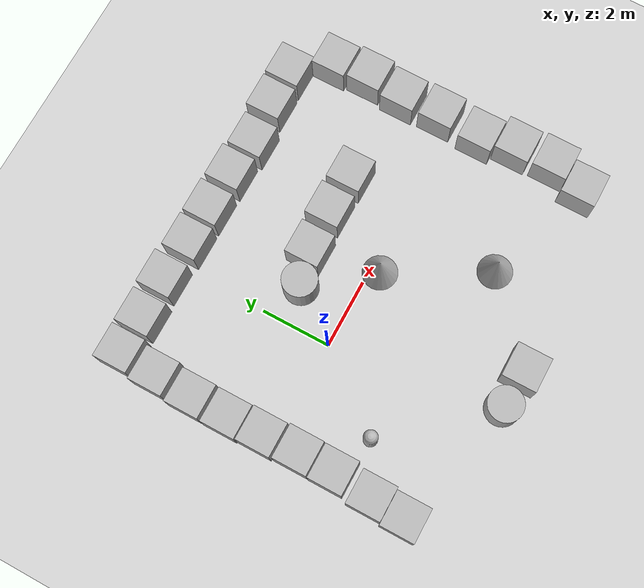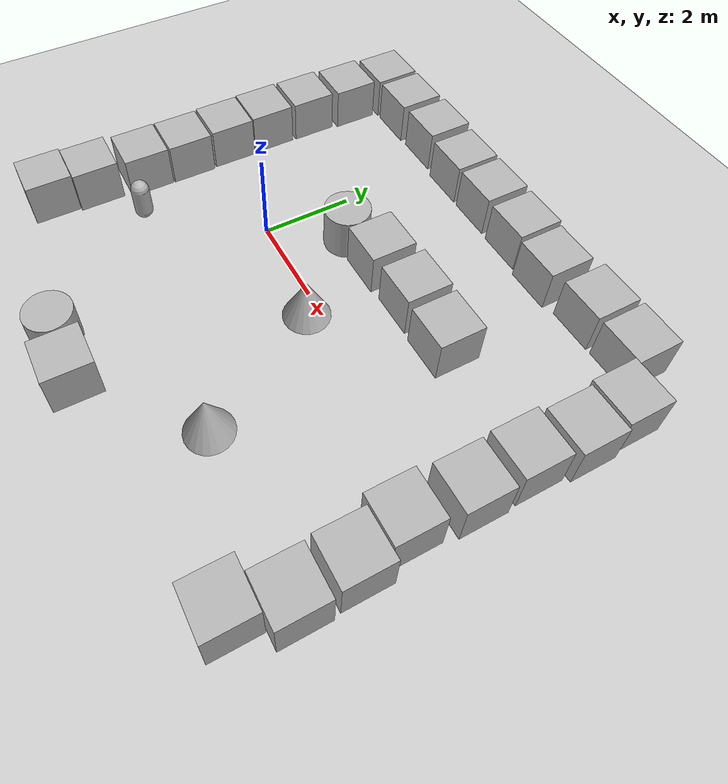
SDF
<sdf version="1.10">
 <world name="empty">
  <model name="ground_plane">
   <static>true</static>
   <link name="link">
    <collision name="collision">
     <geometry><plane><normal>0 0 1</normal><size>100 100</size></plane></geometry>
    </collision>
    <visual name="visual">
     <geometry><plane><normal>0 0 1</normal><size>100 100</size></plane></geometry>
     <material>
      <ambient>0.800000012 0.800000012 0.800000012 1</ambient>
      <diffuse>0.800000012 0.800000012 0.800000012 1</diffuse>
      <specular>0.800000012 0.800000012 0.800000012 1</specular>
     </material>
    </visual>
    <inertial>
     <mass>1</mass>
     <inertia><ixx>1</ixx><ixy>0</ixy><ixz>0</ixz><iyy>1</iyy><iyz>0</iyz><izz>1</izz></inertia>
    </inertial>
   </link>
  </model>
  <model name="box">
   <pose>1.8029219467110664 -4.9402323017846799 0.49999999970892495 1.9456243348768095e-21 -2.0287702973480091e-21 -7.5527752180039009e-22</pose>
   <link name="box_link">
    <inertial>
     <inertia><ixx>0.16666</ixx><ixy>0</ixy><ixz>0</ixz><iyy>0.16666</iyy><iyz>0</iyz><izz>0.16666</izz></inertia>
     <mass>1</mass>
    </inertial>
    <collision name="box_collision"><geometry><box><size>1 1 1</size></box></geometry></collision>
    <visual name="box_visual">
     <geometry><box><size>1 1 1</size></box></geometry>
     <material>
      <ambient>0.300000012 0.300000012 0.300000012 1</ambient>
      <diffuse>0.699999988 0.699999988 0.699999988 1</diffuse>
      <specular>1 1 1 1</specular>
     </material>
    </visual>
   </link>
   <static>false</static>
  </model>
  <model name="cylinder">
   <pose>0.69742500782012939 -4.8877110481262207 0.39216804054167947 1.731746546604768e-17 -2.62531762644311e-18 -3.2708537194835528e-19</pose>
   <link name="cylinder_link">
    <inertial>
     <inertia>
      <ixx>0.14580000000000001</ixx>
      <ixy>0</ixy>
      <ixz>0</ixz>
      <iyy>0.14580000000000001</iyy>
      <iyz>0</iyz>
      <izz>0.125</izz>
     </inertia>
     <mass>1</mass>
    </inertial>
    <collision name="cylinder_collision">
     <geometry><cylinder><radius>0.5</radius><length>1</length></cylinder></geometry>
    </collision>
    <visual name="cylinder_visual">
     <geometry><cylinder><radius>0.5</radius><length>1</length></cylinder></geometry>
     <material>
      <ambient>0.300000012 0.300000012 0.300000012 1</ambient>
      <diffuse>0.699999988 0.699999988 0.699999988 1</diffuse>
      <specular>1 1 1 1</specular>
     </material>
    </visual>
   </link>
   <static>false</static>
  </model>
  <model name="box_0">
   <pose>7.3041419982910156 2.606640100479126 0.49999999990199806 1.5168383847050144e-21 -6.8284900387290397e-21 -7.2088919212664049e-22</pose>
   <link name="box_link">
    <inertial>
     <inertia><ixx>0.16666</ixx><ixy>0</ixy><ixz>0</ixz><iyy>0.16666</iyy><iyz>0</iyz><izz>0.16666</izz></inertia>
     <mass>1</mass>
    </inertial>
    <collision name="box_collision"><geometry><box><size>1 1 1</size></box></geometry></collision>
    <visual name="box_visual">
     <geometry><box><size>1 1 1</size></box></geometry>
     <material>
      <ambient>0.300000012 0.300000012 0.300000012 1</ambient>
      <diffuse>0.699999988 0.699999988 0.699999988 1</diffuse>
      <specular>1 1 1 1</specular>
     </material>
    </visual>
   </link>
   <static>false</static>
  </model>
  <model name="box_1">
   <pose>7.2105679512023926 1.4994100332260132 0.49999999990199806 1.2287045058202266e-21 -2.8117306067242851e-21 -7.0165871101099256e-22</pose>
   <link name="box_link">
    <inertial>
     <inertia><ixx>0.16666</ixx><ixy>0</ixy><ixz>0</ixz><iyy>0.16666</iyy><iyz>0</iyz><izz>0.16666</izz></inertia>
     <mass>1</mass>
    </inertial>
    <collision name="box_collision"><geometry><box><size>1 1 1</size></box></geometry></collision>
    <visual name="box_visual">
     <geometry><box><size>1 1 1</size></box></geometry>
     <material>
      <ambient>0.300000012 0.300000012 0.300000012 1</ambient>
      <diffuse>0.699999988 0.699999988 0.699999988 1</diffuse>
      <specular>1 1 1 1</specular>
     </material>
    </visual>
   </link>
   <static>false</static>
  </model>
  <model name="box_2">
   <pose>7.2486476898193359 0.32666200399398804 0.49999999990199806 1.7912915900273766e-22 -3.8511324085270631e-21 -5.6253342361181017e-22</pose>
   <link name="box_link">
    <inertial>
     <inertia><ixx>0.16666</ixx><ixy>0</ixy><ixz>0</ixz><iyy>0.16666</iyy><iyz>0</iyz><izz>0.16666</izz></inertia>
     <mass>1</mass>
    </inertial>
    <collision name="box_collision"><geometry><box><size>1 1 1</size></box></geometry></collision>
    <visual name="box_visual">
     <geometry><box><size>1 1 1</size></box></geometry>
     <material>
      <ambient>0.300000012 0.300000012 0.300000012 1</ambient>
      <diffuse>0.699999988 0.699999988 0.699999988 1</diffuse>
      <specular>1 1 1 1</specular>
     </material>
    </visual>
   </link>
   <static>false</static>
  </model>
  <model name="box_6">
   <pose>7.1701793670654297 -0.93712598085403442 0.49999999990199806 2.8182951662427704e-21 -6.8739402334419064e-21 4.4936059007286857e-23</pose>
   <link name="box_link">
    <inertial>
     <inertia><ixx>0.16666</ixx><ixy>0</ixy><ixz>0</ixz><iyy>0.16666</iyy><iyz>0</iyz><izz>0.16666</izz></inertia>
     <mass>1</mass>
    </inertial>
    <collision name="box_collision"><geometry><box><size>1 1 1</size></box></geometry></collision>
    <visual name="box_visual">
     <geometry><box><size>1 1 1</size></box></geometry>
     <material>
      <ambient>0.300000012 0.300000012 0.300000012 1</ambient>
      <diffuse>0.699999988 0.699999988 0.699999988 1</diffuse>
      <specular>1 1 1 1</specular>
     </material>
    </visual>
   </link>
   <static>false</static>
  </model>
  <model name="box_7">
   <pose>7.3697552680969238 -1.9676200151443481 0.49999999990199806 8.7941230073099993e-22 -2.2139176495129975e-21 -3.6059947568603891e-22</pose>
   <link name="box_link">
    <inertial>
     <inertia><ixx>0.16666</ixx><ixy>0</ixy><ixz>0</ixz><iyy>0.16666</iyy><iyz>0</iyz><izz>0.16666</izz></inertia>
     <mass>1</mass>
    </inertial>
    <collision name="box_collision"><geometry><box><size>1 1 1</size></box></geometry></collision>
    <visual name="box_visual">
     <geometry><box><size>1 1 1</size></box></geometry>
     <material>
      <ambient>0.300000012 0.300000012 0.300000012 1</ambient>
      <diffuse>0.699999988 0.699999988 0.699999988 1</diffuse>
      <specular>1 1 1 1</specular>
     </material>
    </visual>
   </link>
   <static>false</static>
  </model>
  <model name="box_8">
   <pose>7.4158802936807593 -3.0975309045415642 0.49999999980497606 1.0048033485058014e-21 -2.4640853465547739e-21 -3.9210766489770922e-22</pose>
   <link name="box_link">
    <inertial>
     <inertia><ixx>0.16666</ixx><ixy>0</ixy><ixz>0</ixz><iyy>0.16666</iyy><iyz>0</iyz><izz>0.16666</izz></inertia>
     <mass>1</mass>
    </inertial>
    <collision name="box_collision"><geometry><box><size>1 1 1</size></box></geometry></collision>
    <visual name="box_visual">
     <geometry><box><size>1 1 1</size></box></geometry>
     <material>
      <ambient>0.300000012 0.300000012 0.300000012 1</ambient>
      <diffuse>0.699999988 0.699999988 0.699999988 1</diffuse>
      <specular>1 1 1 1</specular>
     </material>
    </visual>
   </link>
   <static>false</static>
  </model>
  <model name="box_9">
   <pose>7.083578917499171 -4.1148498478956697 0.4999999901998512 -5.0054462870855815e-09 6.7667792938227688e-13 -1.6027558188792147e-06</pose>
   <link name="box_link">
    <inertial>
     <inertia><ixx>0.16666</ixx><ixy>0</ixy><ixz>0</ixz><iyy>0.16666</iyy><iyz>0</iyz><izz>0.16666</izz></inertia>
     <mass>1</mass>
    </inertial>
    <collision name="box_collision"><geometry><box><size>1 1 1</size></box></geometry></collision>
    <visual name="box_visual">
     <geometry><box><size>1 1 1</size></box></geometry>
     <material>
      <ambient>0.300000012 0.300000012 0.300000012 1</ambient>
      <diffuse>0.699999988 0.699999988 0.699999988 1</diffuse>
      <specular>1 1 1 1</specular>
     </material>
    </visual>
   </link>
   <static>false</static>
  </model>
  <model name="box_16">
   <pose>7.2284773836460516 3.6682880873089405 0.49999999019983887 1.7311705597020822e-08 5.0367547478796201e-13 2.2522522120258475e-06</pose>
   <link name="box_link">
    <inertial>
     <inertia><ixx>0.16666</ixx><ixy>0</ixy><ixz>0</ixz><iyy>0.16666</iyy><iyz>0</iyz><izz>0.16666</izz></inertia>
     <mass>1</mass>
    </inertial>
    <collision name="box_collision"><geometry><box><size>1 1 1</size></box></geometry></collision>
    <visual name="box_visual">
     <geometry><box><size>1 1 1</size></box></geometry>
     <material>
      <ambient>0.300000012 0.300000012 0.300000012 1</ambient>
      <diffuse>0.699999988 0.699999988 0.699999988 1</diffuse>
      <specular>1 1 1 1</specular>
     </material>
    </visual>
   </link>
   <static>false</static>
  </model>
  <model name="box_17">
   <pose>6.3534429665516008 4.6682840453196484 0.49999999019963143 -1.2765133758391765e-08 -2.2639738741085814e-13 3.4527045442701908e-06</pose>
   <link name="box_link">
    <inertial>
     <inertia><ixx>0.16666</ixx><ixy>0</ixy><ixz>0</ixz><iyy>0.16666</iyy><iyz>0</iyz><izz>0.16666</izz></inertia>
     <mass>1</mass>
    </inertial>
    <collision name="box_collision"><geometry><box><size>1 1 1</size></box></geometry></collision>
    <visual name="box_visual">
     <geometry><box><size>1 1 1</size></box></geometry>
     <material>
      <ambient>0.300000012 0.300000012 0.300000012 1</ambient>
      <diffuse>0.699999988 0.699999988 0.699999988 1</diffuse>
      <specular>1 1 1 1</specular>
     </material>
    </visual>
   </link>
   <static>false</static>
  </model>
  <model name="box_18">
   <pose>5.2534054060505504 4.6579889603353957 0.49999999990199806 6.2287739151293738e-22 9.3279666454713669e-22 -3.6315533669320137e-22</pose>
   <link name="box_link">
    <inertial>
     <inertia><ixx>0.16666</ixx><ixy>0</ixy><ixz>0</ixz><iyy>0.16666</iyy><iyz>0</iyz><izz>0.16666</izz></inertia>
     <mass>1</mass>
    </inertial>
    <collision name="box_collision"><geometry><box><size>1 1 1</size></box></geometry></collision>
    <visual name="box_visual">
     <geometry><box><size>1 1 1</size></box></geometry>
     <material>
      <ambient>0.300000012 0.300000012 0.300000012 1</ambient>
      <diffuse>0.699999988 0.699999988 0.699999988 1</diffuse>
      <specular>1 1 1 1</specular>
     </material>
    </visual>
   </link>
   <static>false</static>
  </model>
  <model name="box_19">
   <pose>4.0295776346560093 4.5452057706611155 0.49999999990199806 6.2287739151293738e-22 9.3279666454713669e-22 -3.6315533669320137e-22</pose>
   <link name="box_link">
    <inertial>
     <inertia><ixx>0.16666</ixx><ixy>0</ixy><ixz>0</ixz><iyy>0.16666</iyy><iyz>0</iyz><izz>0.16666</izz></inertia>
     <mass>1</mass>
    </inertial>
    <collision name="box_collision"><geometry><box><size>1 1 1</size></box></geometry></collision>
    <visual name="box_visual">
     <geometry><box><size>1 1 1</size></box></geometry>
     <material>
      <ambient>0.300000012 0.300000012 0.300000012 1</ambient>
      <diffuse>0.699999988 0.699999988 0.699999988 1</diffuse>
      <specular>1 1 1 1</specular>
     </material>
    </visual>
   </link>
   <static>false</static>
  </model>
  <model name="box_20">
   <pose>2.9275956714733198 4.6291333544808468 0.49999999990199806 6.2287739151293738e-22 9.3279666454713669e-22 -3.6315533669320137e-22</pose>
   <link name="box_link">
    <inertial>
     <inertia><ixx>0.16666</ixx><ixy>0</ixy><ixz>0</ixz><iyy>0.16666</iyy><iyz>0</iyz><izz>0.16666</izz></inertia>
     <mass>1</mass>
    </inertial>
    <collision name="box_collision"><geometry><box><size>1 1 1</size></box></geometry></collision>
    <visual name="box_visual">
     <geometry><box><size>1 1 1</size></box></geometry>
     <material>
      <ambient>0.300000012 0.300000012 0.300000012 1</ambient>
      <diffuse>0.699999988 0.699999988 0.699999988 1</diffuse>
      <specular>1 1 1 1</specular>
     </material>
    </visual>
   </link>
   <static>false</static>
  </model>
  <model name="box_21">
   <pose>1.7741337268243713 4.6472916629790317 0.49999999990199806 6.2287739151293738e-22 9.3279666454713669e-22 -3.6315533669320137e-22</pose>
   <link name="box_link">
    <inertial>
     <inertia><ixx>0.16666</ixx><ixy>0</ixy><ixz>0</ixz><iyy>0.16666</iyy><iyz>0</iyz><izz>0.16666</izz></inertia>
     <mass>1</mass>
    </inertial>
    <collision name="box_collision"><geometry><box><size>1 1 1</size></box></geometry></collision>
    <visual name="box_visual">
     <geometry><box><size>1 1 1</size></box></geometry>
     <material>
      <ambient>0.300000012 0.300000012 0.300000012 1</ambient>
      <diffuse>0.699999988 0.699999988 0.699999988 1</diffuse>
      <specular>1 1 1 1</specular>
     </material>
    </visual>
   </link>
   <static>false</static>
  </model>
  <model name="box_22">
   <pose>0.67671356024645357 4.6495231021759968 0.49999999990199806 6.2287739151293738e-22 9.3279666454713669e-22 -3.6315533669320137e-22</pose>
   <link name="box_link">
    <inertial>
     <inertia><ixx>0.16666</ixx><ixy>0</ixy><ixz>0</ixz><iyy>0.16666</iyy><iyz>0</iyz><izz>0.16666</izz></inertia>
     <mass>1</mass>
    </inertial>
    <collision name="box_collision"><geometry><box><size>1 1 1</size></box></geometry></collision>
    <visual name="box_visual">
     <geometry><box><size>1 1 1</size></box></geometry>
     <material>
      <ambient>0.300000012 0.300000012 0.300000012 1</ambient>
      <diffuse>0.699999988 0.699999988 0.699999988 1</diffuse>
      <specular>1 1 1 1</specular>
     </material>
    </visual>
   </link>
   <static>false</static>
  </model>
  <model name="box_23">
   <pose>-0.52900487386500306 4.7230642957541882 0.49999999990199806 6.2287739151293738e-22 9.3279666454713669e-22 -3.6315533669320137e-22</pose>
   <link name="box_link">
    <inertial>
     <inertia><ixx>0.16666</ixx><ixy>0</ixy><ixz>0</ixz><iyy>0.16666</iyy><iyz>0</iyz><izz>0.16666</izz></inertia>
     <mass>1</mass>
    </inertial>
    <collision name="box_collision"><geometry><box><size>1 1 1</size></box></geometry></collision>
    <visual name="box_visual">
     <geometry><box><size>1 1 1</size></box></geometry>
     <material>
      <ambient>0.300000012 0.300000012 0.300000012 1</ambient>
      <diffuse>0.699999988 0.699999988 0.699999988 1</diffuse>
      <specular>1 1 1 1</specular>
     </material>
    </visual>
   </link>
   <static>false</static>
  </model>
  <model name="box_24">
   <pose>-1.6940723823211039 4.6902858663462901 0.49999999990199806 6.2287739151293738e-22 9.3279666454713669e-22 -3.6315533669320137e-22</pose>
   <link name="box_link">
    <inertial>
     <inertia><ixx>0.16666</ixx><ixy>0</ixy><ixz>0</ixz><iyy>0.16666</iyy><iyz>0</iyz><izz>0.16666</izz></inertia>
     <mass>1</mass>
    </inertial>
    <collision name="box_collision"><geometry><box><size>1 1 1</size></box></geometry></collision>
    <visual name="box_visual">
     <geometry><box><size>1 1 1</size></box></geometry>
     <material>
      <ambient>0.300000012 0.300000012 0.300000012 1</ambient>
      <diffuse>0.699999988 0.699999988 0.699999988 1</diffuse>
      <specular>1 1 1 1</specular>
     </material>
    </visual>
   </link>
   <static>false</static>
  </model>
  <model name="box_25">
   <pose>-2.7844191484214762 4.680301058964357 0.49999999990199806 6.2287739151293738e-22 9.3279666454713669e-22 -3.6315533669320137e-22</pose>
   <link name="box_link">
    <inertial>
     <inertia><ixx>0.16666</ixx><ixy>0</ixy><ixz>0</ixz><iyy>0.16666</iyy><iyz>0</iyz><izz>0.16666</izz></inertia>
     <mass>1</mass>
    </inertial>
    <collision name="box_collision"><geometry><box><size>1 1 1</size></box></geometry></collision>
    <visual name="box_visual">
     <geometry><box><size>1 1 1</size></box></geometry>
     <material>
      <ambient>0.300000012 0.300000012 0.300000012 1</ambient>
      <diffuse>0.699999988 0.699999988 0.699999988 1</diffuse>
      <specular>1 1 1 1</specular>
     </material>
    </visual>
   </link>
   <static>false</static>
  </model>
  <model name="box_26">
   <pose>-2.8712853102488949 3.5696913958604108 0.49999999990199806 6.2287739151293738e-22 9.3279666454713669e-22 -3.6315533669320137e-22</pose>
   <link name="box_link">
    <inertial>
     <inertia><ixx>0.16666</ixx><ixy>0</ixy><ixz>0</ixz><iyy>0.16666</iyy><iyz>0</iyz><izz>0.16666</izz></inertia>
     <mass>1</mass>
    </inertial>
    <collision name="box_collision"><geometry><box><size>1 1 1</size></box></geometry></collision>
    <visual name="box_visual">
     <geometry><box><size>1 1 1</size></box></geometry>
     <material>
      <ambient>0.300000012 0.300000012 0.300000012 1</ambient>
      <diffuse>0.699999988 0.699999988 0.699999988 1</diffuse>
      <specular>1 1 1 1</specular>
     </material>
    </visual>
   </link>
   <static>false</static>
  </model>
  <model name="box_27">
   <pose>-2.9324519904683397 2.4445221172465974 0.49999999990199806 6.2287739151293738e-22 9.3279666454713669e-22 -3.6315533669320137e-22</pose>
   <link name="box_link">
    <inertial>
     <inertia><ixx>0.16666</ixx><ixy>0</ixy><ixz>0</ixz><iyy>0.16666</iyy><iyz>0</iyz><izz>0.16666</izz></inertia>
     <mass>1</mass>
    </inertial>
    <collision name="box_collision"><geometry><box><size>1 1 1</size></box></geometry></collision>
    <visual name="box_visual">
     <geometry><box><size>1 1 1</size></box></geometry>
     <material>
      <ambient>0.300000012 0.300000012 0.300000012 1</ambient>
      <diffuse>0.699999988 0.699999988 0.699999988 1</diffuse>
      <specular>1 1 1 1</specular>
     </material>
    </visual>
   </link>
   <static>false</static>
  </model>
  <model name="box_28">
   <pose>-2.9430180161721049 1.361581606022769 0.49999999990199806 6.2287739151293738e-22 9.3279666454713669e-22 -3.6315533669320137e-22</pose>
   <link name="box_link">
    <inertial>
     <inertia><ixx>0.16666</ixx><ixy>0</ixy><ixz>0</ixz><iyy>0.16666</iyy><iyz>0</iyz><izz>0.16666</izz></inertia>
     <mass>1</mass>
    </inertial>
    <collision name="box_collision"><geometry><box><size>1 1 1</size></box></geometry></collision>
    <visual name="box_visual">
     <geometry><box><size>1 1 1</size></box></geometry>
     <material>
      <ambient>0.300000012 0.300000012 0.300000012 1</ambient>
      <diffuse>0.699999988 0.699999988 0.699999988 1</diffuse>
      <specular>1 1 1 1</specular>
     </material>
    </visual>
   </link>
   <static>false</static>
  </model>
  <model name="box_29">
   <pose>-2.9187763636575417 0.33238052469198842 0.49999999990199806 6.2287739151293738e-22 9.3279666454713669e-22 -3.6315533669320137e-22</pose>
   <link name="box_link">
    <inertial>
     <inertia><ixx>0.16666</ixx><ixy>0</ixy><ixz>0</ixz><iyy>0.16666</iyy><iyz>0</iyz><izz>0.16666</izz></inertia>
     <mass>1</mass>
    </inertial>
    <collision name="box_collision"><geometry><box><size>1 1 1</size></box></geometry></collision>
    <visual name="box_visual">
     <geometry><box><size>1 1 1</size></box></geometry>
     <material>
      <ambient>0.300000012 0.300000012 0.300000012 1</ambient>
      <diffuse>0.699999988 0.699999988 0.699999988 1</diffuse>
      <specular>1 1 1 1</specular>
     </material>
    </visual>
   </link>
   <static>false</static>
  </model>
  <model name="box_30">
   <pose>-2.8841041433069523 -0.72282486379328414 0.49999999990199806 6.2287739151293738e-22 9.3279666454713669e-22 -3.6315533669320137e-22</pose>
   <link name="box_link">
    <inertial>
     <inertia><ixx>0.16666</ixx><ixy>0</ixy><ixz>0</ixz><iyy>0.16666</iyy><iyz>0</iyz><izz>0.16666</izz></inertia>
     <mass>1</mass>
    </inertial>
    <collision name="box_collision"><geometry><box><size>1 1 1</size></box></geometry></collision>
    <visual name="box_visual">
     <geometry><box><size>1 1 1</size></box></geometry>
     <material>
      <ambient>0.300000012 0.300000012 0.300000012 1</ambient>
      <diffuse>0.699999988 0.699999988 0.699999988 1</diffuse>
      <specular>1 1 1 1</specular>
     </material>
    </visual>
   </link>
   <static>false</static>
  </model>
  <model name="box_31">
   <pose>-2.8944062708120146 -1.7570096625936276 0.49999999990199806 6.2287739151293738e-22 9.3279666454713669e-22 -3.6315533669320137e-22</pose>
   <link name="box_link">
    <inertial>
     <inertia><ixx>0.16666</ixx><ixy>0</ixy><ixz>0</ixz><iyy>0.16666</iyy><iyz>0</iyz><izz>0.16666</izz></inertia>
     <mass>1</mass>
    </inertial>
    <collision name="box_collision"><geometry><box><size>1 1 1</size></box></geometry></collision>
    <visual name="box_visual">
     <geometry><box><size>1 1 1</size></box></geometry>
     <material>
      <ambient>0.300000012 0.300000012 0.300000012 1</ambient>
      <diffuse>0.699999988 0.699999988 0.699999988 1</diffuse>
      <specular>1 1 1 1</specular>
     </material>
    </visual>
   </link>
   <static>false</static>
  </model>
  <model name="box_32">
   <pose>-2.996549854148201 -2.9150881569977187 0.49999999990199806 6.2287739151293738e-22 9.3279666454713669e-22 -3.6315533669320137e-22</pose>
   <link name="box_link">
    <inertial>
     <inertia><ixx>0.16666</ixx><ixy>0</ixy><ixz>0</ixz><iyy>0.16666</iyy><iyz>0</iyz><izz>0.16666</izz></inertia>
     <mass>1</mass>
    </inertial>
    <collision name="box_collision"><geometry><box><size>1 1 1</size></box></geometry></collision>
    <visual name="box_visual">
     <geometry><box><size>1 1 1</size></box></geometry>
     <material>
      <ambient>0.300000012 0.300000012 0.300000012 1</ambient>
      <diffuse>0.699999988 0.699999988 0.699999988 1</diffuse>
      <specular>1 1 1 1</specular>
     </material>
    </visual>
   </link>
   <static>false</static>
  </model>
  <model name="box_33">
   <pose>-3.0658264451040367 -3.9244253724440612 0.49999999990199806 -4.9431071861903433e-22 9.8960145325785522e-22 1.6714802379934959e-22</pose>
   <link name="box_link">
    <inertial>
     <inertia><ixx>0.16666</ixx><ixy>0</ixy><ixz>0</ixz><iyy>0.16666</iyy><iyz>0</iyz><izz>0.16666</izz></inertia>
     <mass>1</mass>
    </inertial>
    <collision name="box_collision"><geometry><box><size>1 1 1</size></box></geometry></collision>
    <visual name="box_visual">
     <geometry><box><size>1 1 1</size></box></geometry>
     <material>
      <ambient>0.300000012 0.300000012 0.300000012 1</ambient>
      <diffuse>0.699999988 0.699999988 0.699999988 1</diffuse>
      <specular>1 1 1 1</specular>
     </material>
    </visual>
   </link>
   <static>false</static>
  </model>
  <model name="cylinder_0">
   <pose>1.0614062794234791 1.4169935847447781 0.49999943341616465 2.4948277832717329e-10 -1.6244634833711402e-08 -3.088237772363138e-08</pose>
   <link name="cylinder_link">
    <inertial>
     <inertia>
      <ixx>0.14580000000000001</ixx>
      <ixy>0</ixy>
      <ixz>0</ixz>
      <iyy>0.14580000000000001</iyy>
      <iyz>0</iyz>
      <izz>0.125</izz>
     </inertia>
     <mass>1</mass>
    </inertial>
    <collision name="cylinder_collision">
     <geometry><cylinder><radius>0.5</radius><length>1</length></cylinder></geometry>
    </collision>
    <visual name="cylinder_visual">
     <geometry><cylinder><radius>0.5</radius><length>1</length></cylinder></geometry>
     <material>
      <ambient>0.300000012 0.300000012 0.300000012 1</ambient>
      <diffuse>0.699999988 0.699999988 0.699999988 1</diffuse>
      <specular>1 1 1 1</specular>
     </material>
    </visual>
   </link>
   <static>false</static>
  </model>
  <model name="box_44">
   <pose>4.4406990092767931 1.6947160730560968 0.49999999990199806 6.2287739151293738e-22 9.3279666454713669e-22 -3.6315533669320137e-22</pose>
   <link name="box_link">
    <inertial>
     <inertia><ixx>0.16666</ixx><ixy>0</ixy><ixz>0</ixz><iyy>0.16666</iyy><iyz>0</iyz><izz>0.16666</izz></inertia>
     <mass>1</mass>
    </inertial>
    <collision name="box_collision"><geometry><box><size>1 1 1</size></box></geometry></collision>
    <visual name="box_visual">
     <geometry><box><size>1 1 1</size></box></geometry>
     <material>
      <ambient>0.300000012 0.300000012 0.300000012 1</ambient>
      <diffuse>0.699999988 0.699999988 0.699999988 1</diffuse>
      <specular>1 1 1 1</specular>
     </material>
    </visual>
   </link>
   <static>false</static>
  </model>
  <model name="box_45">
   <pose>3.2801038782558525 1.7223972543639476 0.49999999990199806 6.2287739151293738e-22 9.3279666454713669e-22 -3.6315533669320137e-22</pose>
   <link name="box_link">
    <inertial>
     <inertia><ixx>0.16666</ixx><ixy>0</ixy><ixz>0</ixz><iyy>0.16666</iyy><iyz>0</iyz><izz>0.16666</izz></inertia>
     <mass>1</mass>
    </inertial>
    <collision name="box_collision"><geometry><box><size>1 1 1</size></box></geometry></collision>
    <visual name="box_visual">
     <geometry><box><size>1 1 1</size></box></geometry>
     <material>
      <ambient>0.300000012 0.300000012 0.300000012 1</ambient>
      <diffuse>0.699999988 0.699999988 0.699999988 1</diffuse>
      <specular>1 1 1 1</specular>
     </material>
    </visual>
   </link>
   <static>false</static>
  </model>
  <model name="box_46">
   <pose>2.0614061808447315 1.6630956738546547 0.49999999007889523 1.1847315302399755e-10 1.2784690259790339e-08 6.4438956192156529e-08</pose>
   <link name="box_link">
    <inertial>
     <inertia><ixx>0.16666</ixx><ixy>0</ixy><ixz>0</ixz><iyy>0.16666</iyy><iyz>0</iyz><izz>0.16666</izz></inertia>
     <mass>1</mass>
    </inertial>
    <collision name="box_collision"><geometry><box><size>1 1 1</size></box></geometry></collision>
    <visual name="box_visual">
     <geometry><box><size>1 1 1</size></box></geometry>
     <material>
      <ambient>0.300000012 0.300000012 0.300000012 1</ambient>
      <diffuse>0.699999988 0.699999988 0.699999988 1</diffuse>
      <specular>1 1 1 1</specular>
     </material>
    </visual>
   </link>
   <static>false</static>
  </model>
  <model name="cone">
   <pose>2.4614475207031306 -0.27806584313924954 0.49999999993296756 5.254931119316858e-17 -7.7132841033999823e-10 6.969765996526587e-23</pose>
   <link name="cone_link">
    <inertial>
     <inertia>
      <ixx>0.074999999999999997</ixx>
      <ixy>0</ixy>
      <ixz>0</ixz>
      <iyy>0.074999999999999997</iyy>
      <iyz>0</iyz>
      <izz>0.074999999999999997</izz>
     </inertia>
     <mass>1</mass>
    </inertial>
    <collision name="cone_collision">
     <geometry><cone><radius>0.5</radius><length>1</length></cone></geometry>
    </collision>
    <visual name="cone_visual">
     <geometry><cone><radius>0.5</radius><length>1</length></cone></geometry>
     <material>
      <ambient>0.300000012 0.300000012 0.300000012 1</ambient>
      <diffuse>0.699999988 0.699999988 0.699999988 1</diffuse>
      <specular>1 1 1 1</specular>
     </material>
    </visual>
   </link>
   <static>false</static>
  </model>
  <model name="cone_0">
   <pose>3.9817937234837815 -3.0419707843355814 0.49999999993296756 5.2545596358786652e-17 -7.7132841034561468e-10 1.0690809589845816e-23</pose>
   <link name="cone_link">
    <inertial>
     <inertia>
      <ixx>0.074999999999999997</ixx>
      <ixy>0</ixy>
      <ixz>0</ixz>
      <iyy>0.074999999999999997</iyy>
      <iyz>0</iyz>
      <izz>0.074999999999999997</izz>
     </inertia>
     <mass>1</mass>
    </inertial>
    <collision name="cone_collision">
     <geometry><cone><radius>0.5</radius><length>1</length></cone></geometry>
    </collision>
    <visual name="cone_visual">
     <geometry><cone><radius>0.5</radius><length>1</length></cone></geometry>
     <material>
      <ambient>0.300000012 0.300000012 0.300000012 1</ambient>
      <diffuse>0.699999988 0.699999988 0.699999988 1</diffuse>
      <specular>1 1 1 1</specular>
     </material>
    </visual>
   </link>
   <static>false</static>
  </model>
  <model name="capsule">
   <pose>-1.7056523684803828 -2.2013420936245871 0.499999999902001 0 0 0</pose>
   <link name="capsule_link">
    <inertial>
     <inertia>
      <ixx>0.074153999999999998</ixx>
      <ixy>0</ixy>
      <ixz>0</ixz>
      <iyy>0.074153999999999998</iyy>
      <iyz>0</iyz>
      <izz>0.018769000000000001</izz>
     </inertia>
     <mass>1</mass>
    </inertial>
    <collision name="capsule_collision">
     <geometry>
      <capsule><radius>0.20000000000000001</radius><length>0.59999999999999998</length></capsule>
     </geometry>
    </collision>
    <visual name="capsule_visual">
     <geometry>
      <capsule><radius>0.20000000000000001</radius><length>0.59999999999999998</length></capsule>
     </geometry>
     <material>
      <ambient>0.300000012 0.300000012 0.300000012 1</ambient>
      <diffuse>0.699999988 0.699999988 0.699999988 1</diffuse>
      <specular>1 1 1 1</specular>
     </material>
    </visual>
   </link>
   <static>false</static>
  </model>
 </world>
</sdf>
